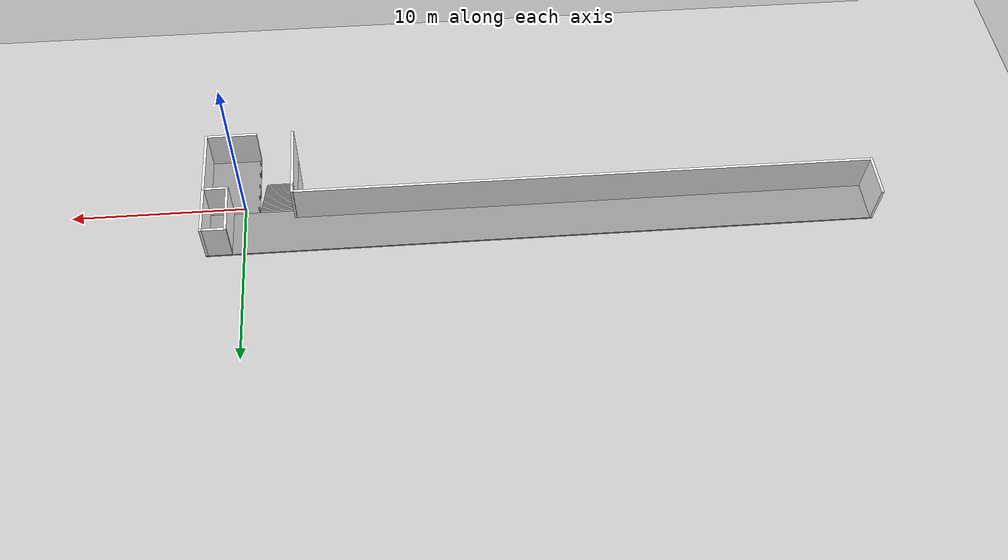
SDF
<sdf version='1.4'>
  <world name='default'>
    <light name='sun' type='directional'>
      <cast_shadows>1</cast_shadows>
      <pose>0 0 10 0 -0 0</pose>
      <diffuse>0.8 0.8 0.8 1</diffuse>
      <specular>0.2 0.2 0.2 1</specular>
      <attenuation>
        <range>1000</range>
        <constant>0.9</constant>
        <linear>0.01</linear>
        <quadratic>0.001</quadratic>
      </attenuation>
      <direction>-0.5 0.1 -0.9</direction>
      <spot>
        <inner_angle>0</inner_angle>
        <outer_angle>0</outer_angle>
        <falloff>0</falloff>
      </spot>
    </light>

    <!-- A ground plane -->
    <include>
      <uri>model://ground_plane</uri>
        <pose>0 0 -2.6 0 0 0</pose>
    </include>

    <physics type="ode">
      <real_time_update_rate>1000.0</real_time_update_rate>
      <max_step_size>0.001</max_step_size>
      <real_time_factor>1</real_time_factor>
      <ode>
        <solver>
          <type>quick</type>
          <iters>150</iters>
          <precon_iters>0</precon_iters>
          <sor>1.400000</sor>
          <use_dynamic_moi_rescaling>1</use_dynamic_moi_rescaling>
        </solver>
        <constraints>
          <cfm>0.00001</cfm>
          <erp>0.2</erp>
          <contact_max_correcting_vel>2000.000000</contact_max_correcting_vel>
          <contact_surface_layer>0.01000</contact_surface_layer>
        </constraints>
      </ode>
    </physics>

    <!-- Load world -->
    <include>
      <uri>model://Building7_4th_Floor_collision_validation</uri>
        <pose>-17 -0.3 -2.6 0 0 -1.57079632679</pose>
    </include>

    <scene>
      <ambient>0.4 0.4 0.4 1</ambient>
      <background>0.7 0.7 0.7 1</background>
      <shadows>1</shadows>
    </scene>
    <gui fullscreen='1'>
      <camera name='user_camera'>
        <pose>-1.17814 5.51592 4.23677 0 0.525798 -1.32559</pose>
        <view_controller>orbit</view_controller>
        <projection_type>perspective</projection_type>
      </camera>
    </gui>

  </world>
</sdf>
